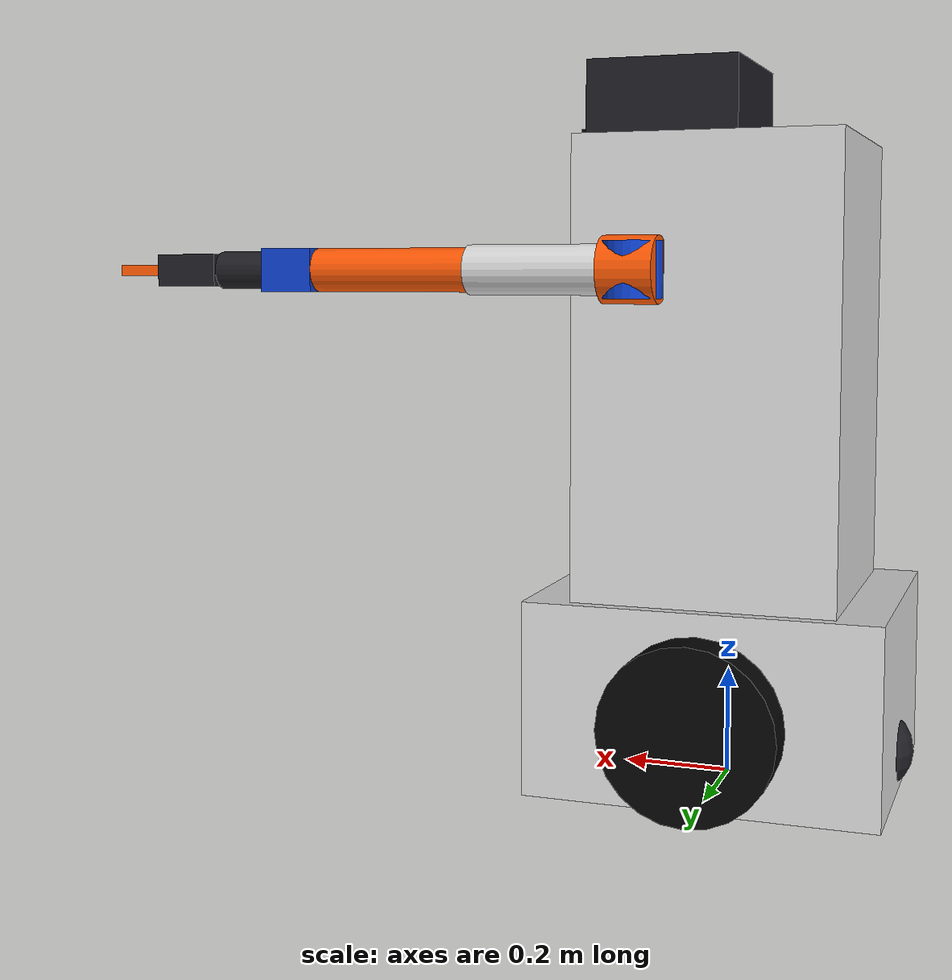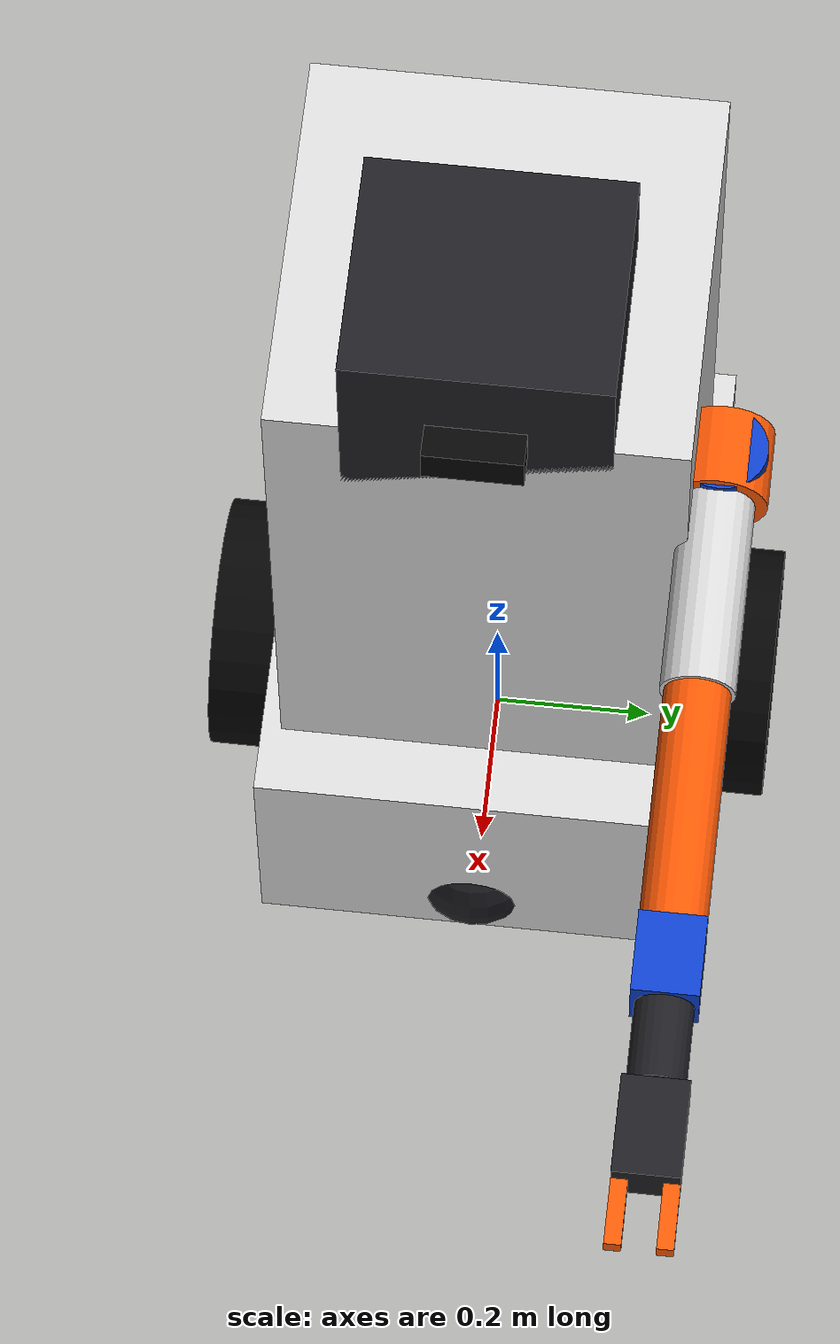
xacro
<?xml version="1.0"?>
<robot xmlns:xacro="http://www.ros.org/wiki/xacro"
       name="humanoid_wheeled_robot">

  <!-- PROPERTIES -->
  <xacro:property name="PI" value="3.1415926535897931"/>

  <!-- MATERIALS -->
  <material name="white">
    <color rgba="0.85 0.85 0.85 1.0"/>
  </material>

  <material name="dark_gray">
    <color rgba="0.12 0.12 0.14 1.0"/>
  </material>

  <material name="blue">
    <color rgba="0.05 0.25 0.8 1.0"/>
  </material>

  <material name="orange">
    <color rgba="1.0 0.35 0.02 1.0"/>
  </material>

  <material name="black">
    <color rgba="0.02 0.02 0.02 1.0"/>
  </material>

  <!-- WORLD -->
  <link name="world"/>

  <joint name="world_fixed" type="fixed">
    <parent link="world"/>
    <child link="base_link"/>
    <origin xyz="0 0 0" rpy="0 0 0"/>
  </joint>

  <!-- MOBILE BASE -->
  <link name="base_link">
    <visual>
      <origin xyz="0 0 0.18" rpy="0 0 0"/>
      <geometry>
        <box size="0.65 0.55 0.36"/>
      </geometry>
      <material name="white"/>
    </visual>
    <collision>
      <origin xyz="0 0 0.18" rpy="0 0 0"/>
      <geometry>
        <box size="0.65 0.55 0.36"/>
      </geometry>
    </collision>
    <inertial>
      <origin xyz="0 0 0.18"/>
      <mass value="20.0"/>
      <inertia ixx="1.0" ixy="0.0" ixz="0.0" iyy="1.0" iyz="0.0" izz="1.0"/>
    </inertial>
  </link>

  <!-- LEFT DRIVE WHEEL -->
  <link name="left_wheel_link">
    <visual>
      <origin xyz="0 0 0" rpy="1.5708 0 0"/>
      <geometry>
        <cylinder radius="0.16" length="0.08"/>
      </geometry>
      <material name="black"/>
    </visual>
    <collision>
      <origin xyz="0 0 0" rpy="1.5708 0 0"/>
      <geometry>
        <cylinder radius="0.16" length="0.08"/>
      </geometry>
    </collision>
    <inertial>
      <origin xyz="0 0 0"/>
      <mass value="2.0"/>
      <inertia ixx="0.02" ixy="0.0" ixz="0.0" iyy="0.02" iyz="0.0" izz="0.02"/>
    </inertial>
  </link>

  <joint name="left_wheel_joint" type="continuous">
    <parent link="base_link"/>
    <child link="left_wheel_link"/>
    <origin xyz="0 0.32 0.16" rpy="0 0 0"/>
    <axis xyz="0 1 0"/>
  </joint>

  <!-- RIGHT DRIVE WHEEL -->
  <link name="right_wheel_link">
    <visual>
      <origin xyz="0 0 0" rpy="1.5708 0 0"/>
      <geometry>
        <cylinder radius="0.16" length="0.08"/>
      </geometry>
      <material name="black"/>
    </visual>
    <collision>
      <origin xyz="0 0 0" rpy="1.5708 0 0"/>
      <geometry>
        <cylinder radius="0.16" length="0.08"/>
      </geometry>
    </collision>
    <inertial>
      <origin xyz="0 0 0"/>
      <mass value="2.0"/>
      <inertia ixx="0.02" ixy="0.0" ixz="0.0" iyy="0.02" iyz="0.0" izz="0.02"/>
    </inertial>
  </link>

  <joint name="right_wheel_joint" type="continuous">
    <parent link="base_link"/>
    <child link="right_wheel_link"/>
    <origin xyz="0 -0.32 0.16" rpy="0 0 0"/>
    <axis xyz="0 1 0"/>
  </joint>

  <!-- FRONT CASTER -->
  <link name="front_caster_link">
    <visual>
      <geometry>
        <sphere radius="0.08"/>
      </geometry>
      <material name="dark_gray"/>
    </visual>
    <collision>
      <geometry>
        <sphere radius="0.08"/>
      </geometry>
    </collision>
    <inertial>
      <origin xyz="0 0 0"/>
      <mass value="0.5"/>
      <inertia ixx="0.001" ixy="0.0" ixz="0.0" iyy="0.001" iyz="0.0" izz="0.001"/>
    </inertial>
  </link>

  <joint name="front_caster_joint" type="fixed">
    <parent link="base_link"/>
    <child link="front_caster_link"/>
    <origin xyz="0.27 0 0.07"/>
  </joint>

  <!-- REAR CASTER -->
  <link name="rear_caster_link">
    <visual>
      <geometry>
        <sphere radius="0.08"/>
      </geometry>
      <material name="dark_gray"/>
    </visual>
    <collision>
      <geometry>
        <sphere radius="0.08"/>
      </geometry>
    </collision>
    <inertial>
      <origin xyz="0 0 0"/>
      <mass value="0.5"/>
      <inertia ixx="0.001" ixy="0.0" ixz="0.0" iyy="0.001" iyz="0.0" izz="0.001"/>
    </inertial>
  </link>

  <joint name="rear_caster_joint" type="fixed">
    <parent link="base_link"/>
    <child link="rear_caster_link"/>
    <origin xyz="-0.27 0 0.07"/>
  </joint>

  <!-- HUMANOID TORSO -->
  <link name="torso_link">
    <visual>
      <origin xyz="0 0 0.42" rpy="0 0 0"/>
      <geometry>
        <box size="0.48 0.50 0.84"/>
      </geometry>
      <material name="white"/>
    </visual>
    <collision>
      <origin xyz="0 0 0.42" rpy="0 0 0"/>
      <geometry>
        <box size="0.48 0.50 0.84"/>
      </geometry>
    </collision>
    <inertial>
      <origin xyz="0 0 0.42"/>
      <mass value="12.0"/>
      <inertia ixx="0.8" ixy="0.0" ixz="0.0" iyy="0.8" iyz="0.0" izz="0.6"/>
    </inertial>
  </link>

  <joint name="torso_joint" type="fixed">
    <parent link="base_link"/>
    <child link="torso_link"/>
    <origin xyz="0 0 0.36" rpy="0 0 0"/>
  </joint>

  <!-- HEAD (Shifted Forward to Front Face) -->
  <link name="head_link">
    <visual>
      <origin xyz="0 0 0" rpy="0 0 0"/>
      <geometry>
        <box size="0.28 0.32 0.28"/>
      </geometry>
      <material name="dark_gray"/>
    </visual>
    <collision>
      <origin xyz="0 0 0" rpy="0 0 0"/>
      <geometry>
        <box size="0.28 0.32 0.28"/>
      </geometry>
    </collision>
    <inertial>
      <origin xyz="0 0 0"/>
      <mass value="2.0"/>
      <inertia ixx="0.08" ixy="0.0" ixz="0.0" iyy="0.08" iyz="0.0" izz="0.08"/>
    </inertial>
  </link>

  <joint name="neck_joint" type="revolute">
    <parent link="torso_link"/>
    <child link="head_link"/>
    <!-- تم تقديم الرأس للأمام قليلاً ليكون في وجه الروبوت -->
    <origin xyz="0.10 0 0.84" rpy="0 0 0"/>
    <axis xyz="0 0 1"/>
    <limit lower="0.0" upper="0.0" effort="10" velocity="1.0"/>
  </joint>

  <!-- RGB-D CAMERA -->
  <link name="camera_link">
    <visual>
      <origin xyz="0 0 0" rpy="0 0 0"/>
      <geometry>
        <box size="0.06 0.12 0.05"/>
      </geometry>
      <material name="black"/>
    </visual>
    <collision>
      <origin xyz="0 0 0" rpy="0 0 0"/>
      <geometry>
        <box size="0.06 0.12 0.05"/>
      </geometry>
    </collision>
    <inertial>
      <origin xyz="0 0 0"/>
      <mass value="0.15"/>
      <inertia ixx="0.001" ixy="0.0" ixz="0.0" iyy="0.001" iyz="0.0" izz="0.001"/>
    </inertial>
  </link>

  <link name="camera_optical_frame"/>

  <joint name="camera_joint" type="fixed">
    <parent link="head_link"/>
    <child link="camera_link"/>
    <origin xyz="0.15 0 0" rpy="0 0 0"/>
  </joint>

  <joint name="camera_optical_joint" type="fixed">
    <parent link="camera_link"/>
    <child link="camera_optical_frame"/>
    <origin xyz="0 0 0" rpy="-1.5708 0 -1.5708"/>
  </joint>

  <!-- 6 DOF ARM (Corrected Front Shoulder Mount) -->
  <link name="shoulder_pitch_link">
    <visual>
      <origin xyz="0 0 0" rpy="0 1.5708 0"/>
      <geometry>
        <cylinder radius="0.06" length="0.10"/>
      </geometry>
      <material name="orange"/>
    </visual>
    <collision>
      <origin xyz="0 0 0" rpy="0 1.5708 0"/>
      <geometry>
        <cylinder radius="0.06" length="0.10"/>
      </geometry>
    </collision>
    <inertial>
      <origin xyz="0 0 0"/>
      <mass value="0.8"/>
      <inertia ixx="0.012" ixy="0.0" ixz="0.0" iyy="0.012" iyz="0.0" izz="0.012"/>
    </inertial>
  </link>

  <joint name="shoulder_pitch_joint" type="revolute">
    <parent link="torso_link"/>
    <child link="shoulder_pitch_link"/>
    <!-- تم ضبط مكان الكتف ليخرج من مقدمة وجانب التورسو بوضوح -->
    <origin xyz="0.12 0.28 0.60" rpy="0 0 0"/>
    <axis xyz="0 1 0"/>
    <limit lower="-1.57" upper="1.57" effort="40" velocity="1.5"/>
  </joint>

  <!-- SHOULDER ROLL -->
  <link name="shoulder_roll_link">
    <visual>
      <origin xyz="0 0 0" rpy="0 0 0"/>
      <geometry>
        <cylinder radius="0.055" length="0.10"/>
      </geometry>
      <material name="blue"/>
    </visual>
    <collision>
      <origin xyz="0 0 0" rpy="0 0 0"/>
      <geometry>
        <cylinder radius="0.055" length="0.10"/>
      </geometry>
    </collision>
    <inertial>
      <origin xyz="0 0 0"/>
      <mass value="1.0"/>
      <inertia ixx="0.015" ixy="0.0" ixz="0.0" iyy="0.015" iyz="0.0" izz="0.015"/>
    </inertial>
  </link>

  <joint name="shoulder_roll_joint" type="revolute">
    <parent link="shoulder_pitch_link"/>
    <child link="shoulder_roll_link"/>
    <origin xyz="0 0 0" rpy="0 0 0"/>
    <axis xyz="1 0 0"/>
    <limit lower="-1.57" upper="1.57" effort="40" velocity="1.5"/>
  </joint>

  <!-- UPPER ARM -->
  <link name="upper_arm_link">
    <visual>
      <origin xyz="0.15 0 0" rpy="0 1.5708 0"/>
      <geometry>
        <cylinder radius="0.045" length="0.30"/>
      </geometry>
      <material name="white"/>
    </visual>
    <collision>
      <origin xyz="0.15 0 0" rpy="0 1.5708 0"/>
      <geometry>
        <cylinder radius="0.045" length="0.30"/>
      </geometry>
    </collision>
    <inertial>
      <origin xyz="0.15 0 0"/>
      <mass value="1.8"/>
      <inertia ixx="0.03" ixy="0.0" ixz="0.0" iyy="0.03" iyz="0.0" izz="0.03"/>
    </inertial>
  </link>

  <joint name="shoulder_yaw_joint" type="revolute">
    <parent link="shoulder_roll_link"/>
    <child link="upper_arm_link"/>
    <origin xyz="0 0 0" rpy="0 0 0"/>
    <axis xyz="0 0 1"/>
    <limit lower="-3.14159" upper="3.14159" effort="30" velocity="1.5"/>
  </joint>

  <!-- FOREARM / ELBOW -->
  <link name="forearm_link">
    <visual>
      <origin xyz="0.15 0 0" rpy="0 1.5708 0"/>
      <geometry>
        <cylinder radius="0.04" length="0.30"/>
      </geometry>
      <material name="orange"/>
    </visual>
    <collision>
      <origin xyz="0.15 0 0" rpy="0 1.5708 0"/>
      <geometry>
        <cylinder radius="0.04" length="0.30"/>
      </geometry>
    </collision>
    <inertial>
      <origin xyz="0.15 0 0"/>
      <mass value="1.2"/>
      <inertia ixx="0.02" ixy="0.0" ixz="0.0" iyy="0.02" iyz="0.0" izz="0.02"/>
    </inertial>
  </link>

  <joint name="elbow_pitch_joint" type="revolute">
    <parent link="upper_arm_link"/>
    <child link="forearm_link"/>
    <origin xyz="0.30 0 0" rpy="0 0 0"/>
    <axis xyz="0 1 0"/>
    <limit lower="-2.2" upper="2.2" effort="30" velocity="1.5"/>
  </joint>

  <!-- WRIST PITCH -->
  <link name="wrist_pitch_link">
    <visual>
      <origin xyz="0.05 0 0" rpy="0 0 0"/>
      <geometry>
        <box size="0.10 0.08 0.08"/>
      </geometry>
      <material name="blue"/>
    </visual>
    <collision>
      <origin xyz="0.05 0 0" rpy="0 0 0"/>
      <geometry>
        <box size="0.10 0.08 0.08"/>
      </geometry>
    </collision>
    <inertial>
      <origin xyz="0.05 0 0"/>
      <mass value="0.4"/>
      <inertia ixx="0.005" ixy="0.0" ixz="0.0" iyy="0.005" iyz="0.0" izz="0.005"/>
    </inertial>
  </link>

  <joint name="wrist_pitch_joint" type="revolute">
    <parent link="forearm_link"/>
    <child link="wrist_pitch_link"/>
    <origin xyz="0.30 0 0" rpy="0 0 0"/>
    <axis xyz="0 1 0"/>
    <limit lower="-1.57" upper="1.57" effort="15" velocity="2.0"/>
  </joint>

  <!-- WRIST ROLL -->
  <link name="wrist_roll_link">
    <visual>
      <origin xyz="0.05 0 0" rpy="0 1.5708 0"/>
      <geometry>
        <cylinder radius="0.035" length="0.10"/>
      </geometry>
      <material name="dark_gray"/>
    </visual>
    <collision>
      <origin xyz="0.05 0 0" rpy="0 1.5708 0"/>
      <geometry>
        <cylinder radius="0.035" length="0.10"/>
      </geometry>
    </collision>
    <inertial>
      <origin xyz="0.05 0 0"/>
      <mass value="0.3"/>
      <inertia ixx="0.004" ixy="0.0" ixz="0.0" iyy="0.004" iyz="0.0" izz="0.004"/>
    </inertial>
  </link>

  <joint name="wrist_roll_joint" type="revolute">
    <parent link="wrist_pitch_link"/>
    <child link="wrist_roll_link"/>
    <origin xyz="0.10 0 0" rpy="0 0 0"/>
    <axis xyz="1 0 0"/>
    <limit lower="-3.14159" upper="3.14159" effort="10" velocity="2.0"/>
  </joint>

  <!-- GRIPPER BODY -->
  <link name="gripper_link">
    <visual>
      <origin xyz="0.06 0 0" rpy="0 0 0"/>
      <geometry>
        <box size="0.12 0.08 0.06"/>
      </geometry>
      <material name="dark_gray"/>
    </visual>
    <collision>
      <origin xyz="0.06 0 0" rpy="0 0 0"/>
      <geometry>
        <box size="0.12 0.08 0.06"/>
      </geometry>
    </collision>
    <inertial>
      <origin xyz="0.06 0 0"/>
      <mass value="0.3"/>
      <inertia ixx="0.003" ixy="0.0" ixz="0.0" iyy="0.003" iyz="0.0" izz="0.003"/>
    </inertial>
  </link>

  <joint name="gripper_fixed_joint" type="fixed">
    <parent link="wrist_roll_link"/>
    <child link="gripper_link"/>
    <origin xyz="0.10 0 0" rpy="0 0 0"/>
  </joint>

  <!-- LEFT GRIPPER FINGER -->
  <link name="left_finger_link">
    <visual>
      <origin xyz="0.04 0 0" rpy="0 0 0"/>
      <geometry>
        <box size="0.08 0.02 0.02"/>
      </geometry>
      <material name="orange"/>
    </visual>
    <collision>
      <origin xyz="0.04 0 0" rpy="0 0 0"/>
      <geometry>
        <box size="0.08 0.02 0.02"/>
      </geometry>
    </collision>
    <inertial>
      <origin xyz="0.04 0 0"/>
      <mass value="0.05"/>
      <inertia ixx="0.0001" ixy="0.0" ixz="0.0" iyy="0.0001" iyz="0.0" izz="0.0001"/>
    </inertial>
  </link>

  <joint name="left_finger_joint" type="prismatic">
    <parent link="gripper_link"/>
    <child link="left_finger_link"/>
    <origin xyz="0.12 0.03 0" rpy="0 0 0"/>
    <axis xyz="0 1 0"/>
    <limit lower="0.0" upper="0.03" effort="10.0" velocity="0.1"/>
  </joint>

  <!-- RIGHT GRIPPER FINGER -->
  <link name="right_finger_link">
    <visual>
      <origin xyz="0.04 0 0" rpy="0 0 0"/>
      <geometry>
        <box size="0.08 0.02 0.02"/>
      </geometry>
      <material name="orange"/>
    </visual>
    <collision>
      <origin xyz="0.04 0 0" rpy="0 0 0"/>
      <geometry>
        <box size="0.08 0.02 0.02"/>
      </geometry>
    </collision>
    <inertial>
      <origin xyz="0.04 0 0"/>
      <mass value="0.05"/>
      <inertia ixx="0.0001" ixy="0.0" ixz="0.0" iyy="0.0001" iyz="0.0" izz="0.0001"/>
    </inertial>
  </link>

  <joint name="right_finger_joint" type="prismatic">
    <parent link="gripper_link"/>
    <child link="right_finger_link"/>
    <origin xyz="0.12 -0.03 0" rpy="0 0 0"/>
    <axis xyz="0 -1 0"/>
    <limit lower="0.0" upper="0.03" effort="10.0" velocity="0.1"/>
  </joint>

  <!-- GAZEBO WHEEL FRICTION -->
  <gazebo reference="left_wheel_link">
    <mu1>1.0</mu1>
    <mu2>1.0</mu2>
    <kp>1000000</kp>
    <kd>100</kd>
  </gazebo>

  <gazebo reference="right_wheel_link">
    <mu1>1.0</mu1>
    <mu2>1.0</mu2>
    <kp>1000000</kp>
    <kd>100</kd>
  </gazebo>

  <!-- GAZEBO RGB-D CAMERA SENSOR -->
  <gazebo reference="camera_link">
  <sensor name="rgbd_camera" type="rgbd_camera">
    <always_on>true</always_on>
    <gz_frame_id>camera_optical_frame</gz_frame_id>
    <update_rate>30</update_rate>
    <visualize>true</visualize>
    <topic>/camera/rgbd</topic>

    <camera>
      <horizontal_fov>1.047</horizontal_fov>
      <image>
        <width>640</width>
        <height>480</height>
        <format>R8G8B8</format>
      </image>
      <clip>
        <near>0.05</near>
        <far>10.0</far>
      </clip>
    </camera>

    <pose>0.15 0 0 0 0.85 0</pose>
  </sensor>
</gazebo>
  <!-- ROS 2 CONTROL -->
  <ros2_control name="GazeboSystem" type="system">
    <hardware>
      <plugin>gz_ros2_control/GazeboSimSystem</plugin>
    </hardware>

    <!-- ARM JOINTS -->
    <joint name="shoulder_pitch_joint">
      <command_interface name="position"/>
      <state_interface name="position"/>
      <state_interface name="velocity"/>
    </joint>

    <joint name="shoulder_roll_joint">
      <command_interface name="position"/>
      <state_interface name="position"/>
      <state_interface name="velocity"/>
    </joint>

    <joint name="shoulder_yaw_joint">
      <command_interface name="position"/>
      <state_interface name="position"/>
      <state_interface name="velocity"/>
    </joint>

    <joint name="elbow_pitch_joint">
      <command_interface name="position"/>
      <state_interface name="position"/>
      <state_interface name="velocity"/>
    </joint>

    <joint name="wrist_pitch_joint">
      <command_interface name="position"/>
      <state_interface name="position"/>
      <state_interface name="velocity"/>
    </joint>

    <joint name="wrist_roll_joint">
      <command_interface name="position"/>
      <state_interface name="position"/>
      <state_interface name="velocity"/>
    </joint>

    <!-- GRIPPER FINGER JOINTS -->
    <joint name="left_finger_joint">
      <command_interface name="position"/>
      <state_interface name="position"/>
      <state_interface name="velocity"/>
    </joint>

    <joint name="right_finger_joint">
      <command_interface name="position"/>
      <state_interface name="position"/>
      <state_interface name="velocity"/>
    </joint>

    <!-- NECK JOINT -->
    <joint name="neck_joint">
      <command_interface name="position"/>
      <state_interface name="position"/>
      <state_interface name="velocity"/>
    </joint>
  </ros2_control>

  <!-- GAZEBO HARMONIC ROS 2 CONTROL PLUGIN -->
  <gazebo>
    <plugin filename="gz_ros2_control-system" name="gz_ros2_control::GazeboSimROS2ControlPlugin">
      <parameters>$(find my_robot)/config/ros2_controllers.yaml</parameters>
    </plugin>
  </gazebo>

</robot>
